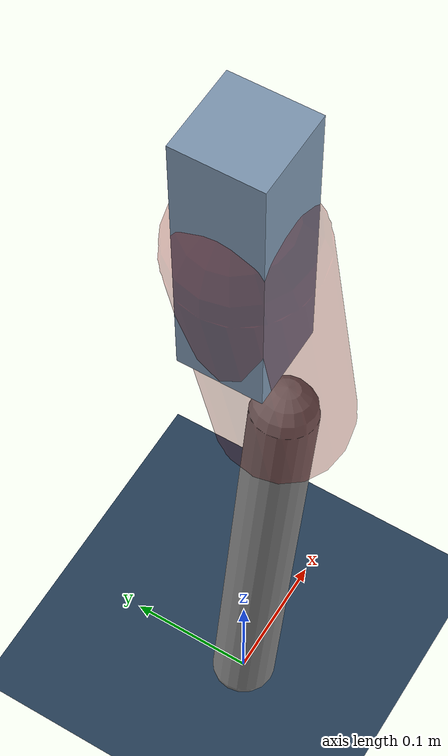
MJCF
<mujoco model="Hopper2D">
	<compiler inertiafromgeom="true" angle="radian" />
	<option timestep="0.001" integrator="implicit" cone="elliptic" solver="Newton" tolerance="1e-10" />

	<default>
		<geom contype="1" conaffinity="1" condim="3" friction="2 0.005 0.0001" solref="0.005 1" />
		<joint limited="true" damping="0.1" />
	</default>

	<asset>
		<texture name="skybox" type="skybox" builtin="gradient" rgb1=".4 .6 .8" rgb2="0 0 0" width="800" height="800" />
		<texture name="grid" type="2d" builtin="checker" rgb1=".1 .2 .3" rgb2=".2 .3 .4" width="300" height="300" mark="edge" markrgb=".2 .3 .4" />
		<material name="ground" texture="grid" texrepeat="1 1" texuniform="true" reflectance="0.1" />
		<material name="leg" rgba="0.5 0.6 0.7 1" />
	</asset>

	<worldbody>

		<geom name="floor" type="plane" size="5 5 0.25" material="ground" />

		<light directional="false" diffuse="0.8 0.8 0.8" specular="0.3 0.3 0.3" pos="0 0 2" dir="0 0 -1" />
		<light mode="targetbodycom" target="base" directional="false" diffuse="0.8 0.8 0.8" specular="0.3 0.3 0.3" pos="0 0 2" dir="0 0 -1" />

		<camera name="fixed" pos="0 -2 1" xyaxes="1 0 0 0 0 1" />
		<camera name="tracking" mode="trackcom" pos="0 -3 1" />

		<body name="root" pos="0 0 0.5645296027635214">
			<joint name="slide_x" type="slide" axis="1 0 0" range="-100 100" />
			<joint name="slide_z" type="slide" axis="0 0 1" range="0 10" />

			<body name="base" pos="0 0 0">
				<geom name="torso" type="box" size="0.03 0.03 0.1" mass="2.82" material="leg" />

				<body name="link1" pos="0 0 0" euler="0 1.3603059287610055 0">
					<joint type="hinge" axis="0 -1 0" pos="0 0 0" name="hinge1" limited="true" range="-3.14 3.14" stiffness="0" damping="0.1" />
					<geom name="thigh" type="capsule" fromto="0 0 0 0.2535753357276512 0 0" size="0.05" rgba="0.5 0 0 0.3" mass="0.8656958728918931" />

					<body name="link2" pos="0.2535753357276512 0 0" euler="0 0.3763256462945868 0">
						<joint type="hinge" axis="0 -1 0" pos="0 0 0" name="hinge2" limited="true" range="-3.14 3.14" stiffness="0" damping="0.1" />
						<geom name="shank" type="capsule" fromto="0 0 0 0.3209542670358702 0 0" size="0.025" mass="0.5004634136286961" />

					</body>
				</body>
			</body>
		</body>
	</worldbody>

	<actuator>
		<motor name="torque1" joint="hinge1" ctrlrange="-95.34146075306936 95.34146075306936" ctrllimited="true" gear="1" />
		<motor name="torque2" joint="hinge2" ctrlrange="-127.8028371135657 127.8028371135657" ctrllimited="true" gear="1" />
	</actuator>
</mujoco>
